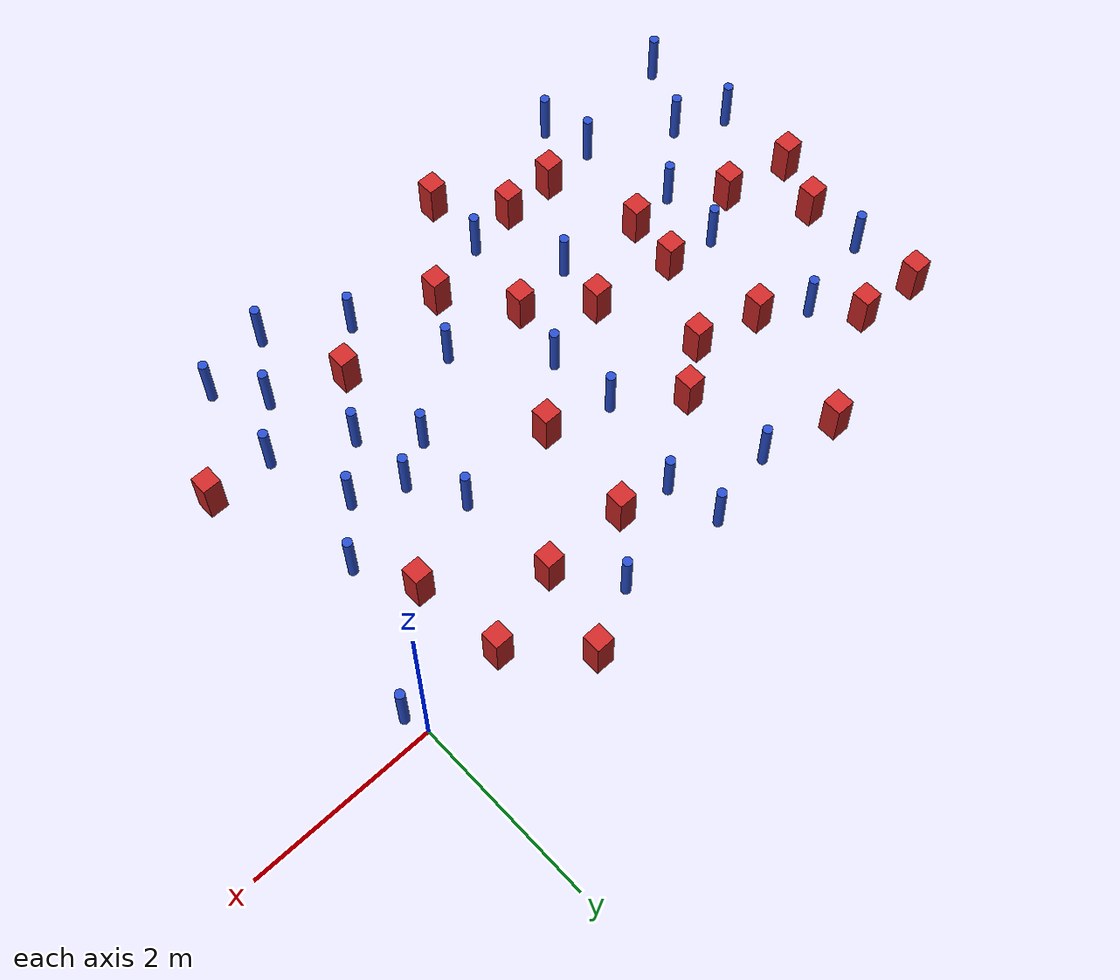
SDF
<sdf version="1.6">
 <model name="dense_60">
  <model name="pole_obstacle0">
   <static>true</static>
   <pose>-3.47626348427 -2.09135809785 7.38925637345e-09 -8.47170692798e-08 1.24976764939e-08 -1.74513093025e-07</pose>
   <link name="link">
    <pose>0 0 0.3 0 -0 0</pose>
    <inertial>
     <mass>1</mass>
     <inertia><ixx>0.145833</ixx><ixy>0</ixy><ixz>0</ixz><iyy>0.145833</iyy><iyz>0</iyz><izz>0.125</izz></inertia>
    </inertial>
    <collision name="collision">
     <geometry><cylinder><radius>0.05</radius><length>.6</length></cylinder></geometry>
    </collision>
    <visual name="visual">
     <geometry><cylinder><radius>0.05</radius><length>.6</length></cylinder></geometry>
     <material>
      <script><name>Gazebo/Blue</name><uri>file://media/materials/scripts/gazebo.material</uri></script>
     </material>
    </visual>
   </link>
  </model>
  <model name="pole_obstacle2">
   <static>true</static>
   <pose>-3.83124900783 -3.6833021294 7.38925637345e-09 -8.47170692798e-08 1.24976764939e-08 -1.74513093025e-07</pose>
   <link name="link">
    <pose>0 0 0.3 0 -0 0</pose>
    <inertial>
     <mass>1</mass>
     <inertia><ixx>0.145833</ixx><ixy>0</ixy><ixz>0</ixz><iyy>0.145833</iyy><iyz>0</iyz><izz>0.125</izz></inertia>
    </inertial>
    <collision name="collision">
     <geometry><cylinder><radius>0.05</radius><length>.6</length></cylinder></geometry>
    </collision>
    <visual name="visual">
     <geometry><cylinder><radius>0.05</radius><length>.6</length></cylinder></geometry>
     <material>
      <script><name>Gazebo/Blue</name><uri>file://media/materials/scripts/gazebo.material</uri></script>
     </material>
    </visual>
   </link>
  </model>
  <model name="square_post_obstacle4">
   <static>true</static>
   <pose>-4.94228190941 -3.76445180743 1.91545236811e-07 -7.35059704564e-06 1.12565212e-07 2.39332434364e-05</pose>
   <link name="link">
    <pose>0 0 0.25 0 -0 0</pose>
    <inertial>
     <mass>100</mass>
     <inertia>
      <ixx>0.166667</ixx>
      <ixy>0</ixy>
      <ixz>0</ixz>
      <iyy>0.166667</iyy>
      <iyz>0</iyz>
      <izz>0.166667</izz>
     </inertia>
    </inertial>
    <collision name="collision"><geometry><box><size>.2 .2 .5</size></box></geometry></collision>
    <visual name="visual">
     <geometry><box><size>.2 .2 .5</size></box></geometry>
     <material>
      <script><name>Gazebo/Red</name><uri>file://media/materials/scripts/gazebo.material</uri></script>
     </material>
    </visual>
   </link>
  </model>
  <model name="square_post_obstacle9">
   <static>true</static>
   <pose>-0.950290578173 -0.117729899493 1.91545236811e-07 -7.35059704564e-06 1.12565212e-07 2.39332434364e-05</pose>
   <link name="link">
    <pose>0 0 0.25 0 -0 0</pose>
    <inertial>
     <mass>100</mass>
     <inertia>
      <ixx>0.166667</ixx>
      <ixy>0</ixy>
      <ixz>0</ixz>
      <iyy>0.166667</iyy>
      <iyz>0</iyz>
      <izz>0.166667</izz>
     </inertia>
    </inertial>
    <collision name="collision"><geometry><box><size>.2 .2 .5</size></box></geometry></collision>
    <visual name="visual">
     <geometry><box><size>.2 .2 .5</size></box></geometry>
     <material>
      <script><name>Gazebo/Red</name><uri>file://media/materials/scripts/gazebo.material</uri></script>
     </material>
    </visual>
   </link>
  </model>
  <model name="square_post_obstacle15">
   <static>true</static>
   <pose>-6.12516694566 -0.35473652986 1.91545236811e-07 -7.35059704564e-06 1.12565212e-07 2.39332434364e-05</pose>
   <link name="link">
    <pose>0 0 0.25 0 -0 0</pose>
    <inertial>
     <mass>100</mass>
     <inertia>
      <ixx>0.166667</ixx>
      <ixy>0</ixy>
      <ixz>0</ixz>
      <iyy>0.166667</iyy>
      <iyz>0</iyz>
      <izz>0.166667</izz>
     </inertia>
    </inertial>
    <collision name="collision"><geometry><box><size>.2 .2 .5</size></box></geometry></collision>
    <visual name="visual">
     <geometry><box><size>.2 .2 .5</size></box></geometry>
     <material>
      <script><name>Gazebo/Red</name><uri>file://media/materials/scripts/gazebo.material</uri></script>
     </material>
    </visual>
   </link>
  </model>
  <model name="pole_obstacle10">
   <static>true</static>
   <pose>-6.95964568385 -3.12976137409 7.38925637345e-09 -8.47170692798e-08 1.24976764937e-08 -1.74513093023e-07</pose>
   <link name="link">
    <pose>0 0 0.3 0 -0 0</pose>
    <inertial>
     <mass>1</mass>
     <inertia><ixx>0.145833</ixx><ixy>0</ixy><ixz>0</ixz><iyy>0.145833</iyy><iyz>0</iyz><izz>0.125</izz></inertia>
    </inertial>
    <collision name="collision">
     <geometry><cylinder><radius>0.05</radius><length>.6</length></cylinder></geometry>
    </collision>
    <visual name="visual">
     <geometry><cylinder><radius>0.05</radius><length>.6</length></cylinder></geometry>
     <material>
      <script><name>Gazebo/Blue</name><uri>file://media/materials/scripts/gazebo.material</uri></script>
     </material>
    </visual>
   </link>
  </model>
  <model name="square_post_obstacle23">
   <static>true</static>
   <pose>-3.10756083365 -3.45738375206 1.91545236811e-07 -7.35059704564e-06 1.12565212e-07 2.39332434364e-05</pose>
   <link name="link">
    <pose>0 0 0.25 0 -0 0</pose>
    <inertial>
     <mass>100</mass>
     <inertia>
      <ixx>0.166667</ixx>
      <ixy>0</ixy>
      <ixz>0</ixz>
      <iyy>0.166667</iyy>
      <iyz>0</iyz>
      <izz>0.166667</izz>
     </inertia>
    </inertial>
    <collision name="collision"><geometry><box><size>.2 .2 .5</size></box></geometry></collision>
    <visual name="visual">
     <geometry><box><size>.2 .2 .5</size></box></geometry>
     <material>
      <script><name>Gazebo/Red</name><uri>file://media/materials/scripts/gazebo.material</uri></script>
     </material>
    </visual>
   </link>
  </model>
  <model name="pole_obstacle33">
   <static>true</static>
   <pose>-3.54106960491 -1.35461371272 7.38925637345e-09 -8.47170692796e-08 1.24976764713e-08 -1.74513093037e-07</pose>
   <link name="link">
    <pose>0 0 0.3 0 -0 0</pose>
    <inertial>
     <mass>1</mass>
     <inertia><ixx>0.145833</ixx><ixy>0</ixy><ixz>0</ixz><iyy>0.145833</iyy><iyz>0</iyz><izz>0.125</izz></inertia>
    </inertial>
    <collision name="collision">
     <geometry><cylinder><radius>0.05</radius><length>.6</length></cylinder></geometry>
    </collision>
    <visual name="visual">
     <geometry><cylinder><radius>0.05</radius><length>.6</length></cylinder></geometry>
     <material>
      <script><name>Gazebo/Blue</name><uri>file://media/materials/scripts/gazebo.material</uri></script>
     </material>
    </visual>
   </link>
  </model>
  <model name="pole_obstacle40">
   <static>true</static>
   <pose>-1.49519705118 -4.31215156015 7.38925637345e-09 -8.47170692799e-08 1.24976765033e-08 -1.74513093018e-07</pose>
   <link name="link">
    <pose>0 0 0.3 0 -0 0</pose>
    <inertial>
     <mass>1</mass>
     <inertia><ixx>0.145833</ixx><ixy>0</ixy><ixz>0</ixz><iyy>0.145833</iyy><iyz>0</iyz><izz>0.125</izz></inertia>
    </inertial>
    <collision name="collision">
     <geometry><cylinder><radius>0.05</radius><length>.6</length></cylinder></geometry>
    </collision>
    <visual name="visual">
     <geometry><cylinder><radius>0.05</radius><length>.6</length></cylinder></geometry>
     <material>
      <script><name>Gazebo/Blue</name><uri>file://media/materials/scripts/gazebo.material</uri></script>
     </material>
    </visual>
   </link>
  </model>
  <model name="pole_obstacle44">
   <static>true</static>
   <pose>-4.32298749021 -2.86295377761 7.38925637345e-09 -8.47170692798e-08 1.24976764937e-08 -1.74513093023e-07</pose>
   <link name="link">
    <pose>0 0 0.3 0 -0 0</pose>
    <inertial>
     <mass>1</mass>
     <inertia><ixx>0.145833</ixx><ixy>0</ixy><ixz>0</ixz><iyy>0.145833</iyy><iyz>0</iyz><izz>0.125</izz></inertia>
    </inertial>
    <collision name="collision">
     <geometry><cylinder><radius>0.05</radius><length>.6</length></cylinder></geometry>
    </collision>
    <visual name="visual">
     <geometry><cylinder><radius>0.05</radius><length>.6</length></cylinder></geometry>
     <material>
      <script><name>Gazebo/Blue</name><uri>file://media/materials/scripts/gazebo.material</uri></script>
     </material>
    </visual>
   </link>
  </model>
  <model name="square_post_obstacle48">
   <static>true</static>
   <pose>-1.83645050394 -3.36982657176 1.91545236811e-07 -7.35059704564e-06 1.12565212e-07 2.39332434364e-05</pose>
   <link name="link">
    <pose>0 0 0.25 0 -0 0</pose>
    <inertial>
     <mass>100</mass>
     <inertia>
      <ixx>0.166667</ixx>
      <ixy>0</ixy>
      <ixz>0</ixz>
      <iyy>0.166667</iyy>
      <iyz>0</iyz>
      <izz>0.166667</izz>
     </inertia>
    </inertial>
    <collision name="collision"><geometry><box><size>.2 .2 .5</size></box></geometry></collision>
    <visual name="visual">
     <geometry><box><size>.2 .2 .5</size></box></geometry>
     <material>
      <script><name>Gazebo/Red</name><uri>file://media/materials/scripts/gazebo.material</uri></script>
     </material>
    </visual>
   </link>
  </model>
  <model name="pole_obstacle47">
   <static>true</static>
   <pose>0.0822864104935 -0.241739446556 7.38925637345e-09 -8.471706928e-08 1.24976765132e-08 -1.74513093012e-07</pose>
   <link name="link">
    <pose>0 0 0.3 0 -0 0</pose>
    <inertial>
     <mass>1</mass>
     <inertia><ixx>0.145833</ixx><ixy>0</ixy><ixz>0</ixz><iyy>0.145833</iyy><iyz>0</iyz><izz>0.125</izz></inertia>
    </inertial>
    <collision name="collision">
     <geometry><cylinder><radius>0.05</radius><length>.6</length></cylinder></geometry>
    </collision>
    <visual name="visual">
     <geometry><cylinder><radius>0.05</radius><length>.6</length></cylinder></geometry>
     <material>
      <script><name>Gazebo/Blue</name><uri>file://media/materials/scripts/gazebo.material</uri></script>
     </material>
    </visual>
   </link>
  </model>
  <model name="pole_obstacle48">
   <static>true</static>
   <pose>-0.965469387628 -2.2553306697 7.38925637345e-09 -8.47170692799e-08 1.24976765063e-08 -1.74513093018e-07</pose>
   <link name="link">
    <pose>0 0 0.3 0 -0 0</pose>
    <inertial>
     <mass>1</mass>
     <inertia><ixx>0.145833</ixx><ixy>0</ixy><ixz>0</ixz><iyy>0.145833</iyy><iyz>0</iyz><izz>0.125</izz></inertia>
    </inertial>
    <collision name="collision">
     <geometry><cylinder><radius>0.05</radius><length>.6</length></cylinder></geometry>
    </collision>
    <visual name="visual">
     <geometry><cylinder><radius>0.05</radius><length>.6</length></cylinder></geometry>
     <material>
      <script><name>Gazebo/Blue</name><uri>file://media/materials/scripts/gazebo.material</uri></script>
     </material>
    </visual>
   </link>
  </model>
  <model name="pole_obstacle50">
   <static>true</static>
   <pose>-5.54593377779 -3.81472021383 7.38925637345e-09 -8.47170692798e-08 1.24976764937e-08 -1.74513093023e-07</pose>
   <link name="link">
    <pose>0 0 0.3 0 -0 0</pose>
    <inertial>
     <mass>1</mass>
     <inertia><ixx>0.145833</ixx><ixy>0</ixy><ixz>0</ixz><iyy>0.145833</iyy><iyz>0</iyz><izz>0.125</izz></inertia>
    </inertial>
    <collision name="collision">
     <geometry><cylinder><radius>0.05</radius><length>.6</length></cylinder></geometry>
    </collision>
    <visual name="visual">
     <geometry><cylinder><radius>0.05</radius><length>.6</length></cylinder></geometry>
     <material>
      <script><name>Gazebo/Blue</name><uri>file://media/materials/scripts/gazebo.material</uri></script>
     </material>
    </visual>
   </link>
  </model>
  <model name="square_post_obstacle51">
   <static>true</static>
   <pose>-3.85667295764 -4.37827110844 1.91545236811e-07 -7.35059704564e-06 1.12565212e-07 2.39332434364e-05</pose>
   <link name="link">
    <pose>0 0 0.25 0 -0 0</pose>
    <inertial>
     <mass>100</mass>
     <inertia>
      <ixx>0.166667</ixx>
      <ixy>0</ixy>
      <ixz>0</ixz>
      <iyy>0.166667</iyy>
      <iyz>0</iyz>
      <izz>0.166667</izz>
     </inertia>
    </inertial>
    <collision name="collision"><geometry><box><size>.2 .2 .5</size></box></geometry></collision>
    <visual name="visual">
     <geometry><box><size>.2 .2 .5</size></box></geometry>
     <material>
      <script><name>Gazebo/Red</name><uri>file://media/materials/scripts/gazebo.material</uri></script>
     </material>
    </visual>
   </link>
  </model>
  <model name="pole_obstacle51">
   <static>true</static>
   <pose>-1.91894833646 -2.29968438132 7.38925637345e-09 -8.47170692799e-08 1.24976765053e-08 -1.74513093017e-07</pose>
   <link name="link">
    <pose>0 0 0.3 0 -0 0</pose>
    <inertial>
     <mass>1</mass>
     <inertia><ixx>0.145833</ixx><ixy>0</ixy><ixz>0</ixz><iyy>0.145833</iyy><iyz>0</iyz><izz>0.125</izz></inertia>
    </inertial>
    <collision name="collision">
     <geometry><cylinder><radius>0.05</radius><length>.6</length></cylinder></geometry>
    </collision>
    <visual name="visual">
     <geometry><cylinder><radius>0.05</radius><length>.6</length></cylinder></geometry>
     <material>
      <script><name>Gazebo/Blue</name><uri>file://media/materials/scripts/gazebo.material</uri></script>
     </material>
    </visual>
   </link>
  </model>
  <model name="pole_obstacle54">
   <static>true</static>
   <pose>-1.44606926043 -2.76261912526 7.38925637345e-09 -8.47170692799e-08 1.24976765053e-08 -1.74513093017e-07</pose>
   <link name="link">
    <pose>0 0 0.3 0 -0 0</pose>
    <inertial>
     <mass>1</mass>
     <inertia><ixx>0.145833</ixx><ixy>0</ixy><ixz>0</ixz><iyy>0.145833</iyy><iyz>0</iyz><izz>0.125</izz></inertia>
    </inertial>
    <collision name="collision">
     <geometry><cylinder><radius>0.05</radius><length>.6</length></cylinder></geometry>
    </collision>
    <visual name="visual">
     <geometry><cylinder><radius>0.05</radius><length>.6</length></cylinder></geometry>
     <material>
      <script><name>Gazebo/Blue</name><uri>file://media/materials/scripts/gazebo.material</uri></script>
     </material>
    </visual>
   </link>
  </model>
  <model name="square_post_obstacle58">
   <static>true</static>
   <pose>-5.33617169923 -1.07786139157 1.91545236811e-07 -7.35059704564e-06 1.12565212e-07 2.39332434364e-05</pose>
   <link name="link">
    <pose>0 0 0.25 0 -0 0</pose>
    <inertial>
     <mass>100</mass>
     <inertia>
      <ixx>0.166667</ixx>
      <ixy>0</ixy>
      <ixz>0</ixz>
      <iyy>0.166667</iyy>
      <iyz>0</iyz>
      <izz>0.166667</izz>
     </inertia>
    </inertial>
    <collision name="collision"><geometry><box><size>.2 .2 .5</size></box></geometry></collision>
    <visual name="visual">
     <geometry><box><size>.2 .2 .5</size></box></geometry>
     <material>
      <script><name>Gazebo/Red</name><uri>file://media/materials/scripts/gazebo.material</uri></script>
     </material>
    </visual>
   </link>
  </model>
  <model name="square_post_obstacle59">
   <static>true</static>
   <pose>-4.64176704061 -1.24235177643 1.91545236811e-07 -7.35059704564e-06 1.12565212e-07 2.39332434364e-05</pose>
   <link name="link">
    <pose>0 0 0.25 0 -0 0</pose>
    <inertial>
     <mass>100</mass>
     <inertia>
      <ixx>0.166667</ixx>
      <ixy>0</ixy>
      <ixz>0</ixz>
      <iyy>0.166667</iyy>
      <iyz>0</iyz>
      <izz>0.166667</izz>
     </inertia>
    </inertial>
    <collision name="collision"><geometry><box><size>.2 .2 .5</size></box></geometry></collision>
    <visual name="visual">
     <geometry><box><size>.2 .2 .5</size></box></geometry>
     <material>
      <script><name>Gazebo/Red</name><uri>file://media/materials/scripts/gazebo.material</uri></script>
     </material>
    </visual>
   </link>
  </model>
  <model name="pole_obstacle59">
   <static>true</static>
   <pose>-5.702376485 -2.09050226253 7.38925637345e-09 -8.47170692798e-08 1.24976764937e-08 -1.74513093023e-07</pose>
   <link name="link">
    <pose>0 0 0.3 0 -0 0</pose>
    <inertial>
     <mass>1</mass>
     <inertia><ixx>0.145833</ixx><ixy>0</ixy><ixz>0</ixz><iyy>0.145833</iyy><iyz>0</iyz><izz>0.125</izz></inertia>
    </inertial>
    <collision name="collision">
     <geometry><cylinder><radius>0.05</radius><length>.6</length></cylinder></geometry>
    </collision>
    <visual name="visual">
     <geometry><cylinder><radius>0.05</radius><length>.6</length></cylinder></geometry>
     <material>
      <script><name>Gazebo/Blue</name><uri>file://media/materials/scripts/gazebo.material</uri></script>
     </material>
    </visual>
   </link>
  </model>
  <model name="square_post_obstacle64">
   <static>true</static>
   <pose>-2.7587264969 -0.38735793425 1.91545236811e-07 -7.35059704564e-06 1.12565212e-07 2.39332434364e-05</pose>
   <link name="link">
    <pose>0 0 0.25 0 -0 0</pose>
    <inertial>
     <mass>100</mass>
     <inertia>
      <ixx>0.166667</ixx>
      <ixy>0</ixy>
      <ixz>0</ixz>
      <iyy>0.166667</iyy>
      <iyz>0</iyz>
      <izz>0.166667</izz>
     </inertia>
    </inertial>
    <collision name="collision"><geometry><box><size>.2 .2 .5</size></box></geometry></collision>
    <visual name="visual">
     <geometry><box><size>.2 .2 .5</size></box></geometry>
     <material>
      <script><name>Gazebo/Red</name><uri>file://media/materials/scripts/gazebo.material</uri></script>
     </material>
    </visual>
   </link>
  </model>
  <model name="square_post_obstacle75">
   <static>true</static>
   <pose>-6.21620699617 -2.37087554527 1.91545236811e-07 -7.35059704564e-06 1.12565212e-07 2.39332434364e-05</pose>
   <link name="link">
    <pose>0 0 0.25 0 -0 0</pose>
    <inertial>
     <mass>100</mass>
     <inertia>
      <ixx>0.166667</ixx>
      <ixy>0</ixy>
      <ixz>0</ixz>
      <iyy>0.166667</iyy>
      <iyz>0</iyz>
      <izz>0.166667</izz>
     </inertia>
    </inertial>
    <collision name="collision"><geometry><box><size>.2 .2 .5</size></box></geometry></collision>
    <visual name="visual">
     <geometry><box><size>.2 .2 .5</size></box></geometry>
     <material>
      <script><name>Gazebo/Red</name><uri>file://media/materials/scripts/gazebo.material</uri></script>
     </material>
    </visual>
   </link>
  </model>
  <model name="pole_obstacle70">
   <static>true</static>
   <pose>-1.77735977837 -1.48738273804 7.38925637345e-09 -8.471706928e-08 1.24976765079e-08 -1.74513093017e-07</pose>
   <link name="link">
    <pose>0 0 0.3 0 -0 0</pose>
    <inertial>
     <mass>1</mass>
     <inertia><ixx>0.145833</ixx><ixy>0</ixy><ixz>0</ixz><iyy>0.145833</iyy><iyz>0</iyz><izz>0.125</izz></inertia>
    </inertial>
    <collision name="collision">
     <geometry><cylinder><radius>0.05</radius><length>.6</length></cylinder></geometry>
    </collision>
    <visual name="visual">
     <geometry><cylinder><radius>0.05</radius><length>.6</length></cylinder></geometry>
     <material>
      <script><name>Gazebo/Blue</name><uri>file://media/materials/scripts/gazebo.material</uri></script>
     </material>
    </visual>
   </link>
  </model>
  <model name="square_post_obstacle76">
   <static>true</static>
   <pose>-2.85892131777 -1.53526582445 1.91545236811e-07 -7.35059704564e-06 1.12565212e-07 2.39332434364e-05</pose>
   <link name="link">
    <pose>0 0 0.25 0 -0 0</pose>
    <inertial>
     <mass>100</mass>
     <inertia>
      <ixx>0.166667</ixx>
      <ixy>0</ixy>
      <ixz>0</ixz>
      <iyy>0.166667</iyy>
      <iyz>0</iyz>
      <izz>0.166667</izz>
     </inertia>
    </inertial>
    <collision name="collision"><geometry><box><size>.2 .2 .5</size></box></geometry></collision>
    <visual name="visual">
     <geometry><box><size>.2 .2 .5</size></box></geometry>
     <material>
      <script><name>Gazebo/Red</name><uri>file://media/materials/scripts/gazebo.material</uri></script>
     </material>
    </visual>
   </link>
  </model>
  <model name="pole_obstacle76">
   <static>true</static>
   <pose>-2.2700673939 -3.82190759298 7.38925637345e-09 -8.47170692798e-08 1.24976764939e-08 -1.74513093025e-07</pose>
   <link name="link">
    <pose>0 0 0.3 0 -0 0</pose>
    <inertial>
     <mass>1</mass>
     <inertia><ixx>0.145833</ixx><ixy>0</ixy><ixz>0</ixz><iyy>0.145833</iyy><iyz>0</iyz><izz>0.125</izz></inertia>
    </inertial>
    <collision name="collision">
     <geometry><cylinder><radius>0.05</radius><length>.6</length></cylinder></geometry>
    </collision>
    <visual name="visual">
     <geometry><cylinder><radius>0.05</radius><length>.6</length></cylinder></geometry>
     <material>
      <script><name>Gazebo/Blue</name><uri>file://media/materials/scripts/gazebo.material</uri></script>
     </material>
    </visual>
   </link>
  </model>
  <model name="pole_obstacle82">
   <static>true</static>
   <pose>-5.41580588375 -4.33905068635 7.38925637345e-09 -8.47170692796e-08 1.24976764786e-08 -1.74513093032e-07</pose>
   <link name="link">
    <pose>0 0 0.3 0 -0 0</pose>
    <inertial>
     <mass>1</mass>
     <inertia><ixx>0.145833</ixx><ixy>0</ixy><ixz>0</ixz><iyy>0.145833</iyy><iyz>0</iyz><izz>0.125</izz></inertia>
    </inertial>
    <collision name="collision">
     <geometry><cylinder><radius>0.05</radius><length>.6</length></cylinder></geometry>
    </collision>
    <visual name="visual">
     <geometry><cylinder><radius>0.05</radius><length>.6</length></cylinder></geometry>
     <material>
      <script><name>Gazebo/Blue</name><uri>file://media/materials/scripts/gazebo.material</uri></script>
     </material>
    </visual>
   </link>
  </model>
  <model name="pole_obstacle83">
   <static>true</static>
   <pose>-4.22010175236 0.0912814891144 7.38925637345e-09 -8.47170692799e-08 1.24976765066e-08 -1.74513093016e-07</pose>
   <link name="link">
    <pose>0 0 0.3 0 -0 0</pose>
    <inertial>
     <mass>1</mass>
     <inertia><ixx>0.145833</ixx><ixy>0</ixy><ixz>0</ixz><iyy>0.145833</iyy><iyz>0</iyz><izz>0.125</izz></inertia>
    </inertial>
    <collision name="collision">
     <geometry><cylinder><radius>0.05</radius><length>.6</length></cylinder></geometry>
    </collision>
    <visual name="visual">
     <geometry><cylinder><radius>0.05</radius><length>.6</length></cylinder></geometry>
     <material>
      <script><name>Gazebo/Blue</name><uri>file://media/materials/scripts/gazebo.material</uri></script>
     </material>
    </visual>
   </link>
  </model>
  <model name="pole_obstacle85">
   <static>true</static>
   <pose>-3.30812540201 -0.297309392076 7.38925637345e-09 -8.47170692793e-08 1.24976764479e-08 -1.74513093039e-07</pose>
   <link name="link">
    <pose>0 0 0.3 0 -0 0</pose>
    <inertial>
     <mass>1</mass>
     <inertia><ixx>0.145833</ixx><ixy>0</ixy><ixz>0</ixz><iyy>0.145833</iyy><iyz>0</iyz><izz>0.125</izz></inertia>
    </inertial>
    <collision name="collision">
     <geometry><cylinder><radius>0.05</radius><length>.6</length></cylinder></geometry>
    </collision>
    <visual name="visual">
     <geometry><cylinder><radius>0.05</radius><length>.6</length></cylinder></geometry>
     <material>
      <script><name>Gazebo/Blue</name><uri>file://media/materials/scripts/gazebo.material</uri></script>
     </material>
    </visual>
   </link>
  </model>
  <model name="square_post_obstacle80">
   <static>true</static>
   <pose>-0.000718190362245 -3.16822527989 1.91545236811e-07 -7.35059704564e-06 1.12565212e-07 2.39332434364e-05</pose>
   <link name="link">
    <pose>0 0 0.25 0 -0 0</pose>
    <inertial>
     <mass>100</mass>
     <inertia>
      <ixx>0.166667</ixx>
      <ixy>0</ixy>
      <ixz>0</ixz>
      <iyy>0.166667</iyy>
      <iyz>0</iyz>
      <izz>0.166667</izz>
     </inertia>
    </inertial>
    <collision name="collision"><geometry><box><size>.2 .2 .5</size></box></geometry></collision>
    <visual name="visual">
     <geometry><box><size>.2 .2 .5</size></box></geometry>
     <material>
      <script><name>Gazebo/Red</name><uri>file://media/materials/scripts/gazebo.material</uri></script>
     </material>
    </visual>
   </link>
  </model>
  <model name="pole_obstacle104">
   <static>true</static>
   <pose>-6.4433133397 -3.38967268869 7.38925637345e-09 -8.47170692798e-08 1.24976764937e-08 -1.74513093023e-07</pose>
   <link name="link">
    <pose>0 0 0.3 0 -0 0</pose>
    <inertial>
     <mass>1</mass>
     <inertia><ixx>0.145833</ixx><ixy>0</ixy><ixz>0</ixz><iyy>0.145833</iyy><iyz>0</iyz><izz>0.125</izz></inertia>
    </inertial>
    <collision name="collision">
     <geometry><cylinder><radius>0.05</radius><length>.6</length></cylinder></geometry>
    </collision>
    <visual name="visual">
     <geometry><cylinder><radius>0.05</radius><length>.6</length></cylinder></geometry>
     <material>
      <script><name>Gazebo/Blue</name><uri>file://media/materials/scripts/gazebo.material</uri></script>
     </material>
    </visual>
   </link>
  </model>
  <model name="square_post_obstacle93">
   <static>true</static>
   <pose>-0.841296802821 -1.09614409623 1.91545236811e-07 -7.35059704564e-06 1.12565212e-07 2.39332434364e-05</pose>
   <link name="link">
    <pose>0 0 0.25 0 -0 0</pose>
    <inertial>
     <mass>100</mass>
     <inertia>
      <ixx>0.166667</ixx>
      <ixy>0</ixy>
      <ixz>0</ixz>
      <iyy>0.166667</iyy>
      <iyz>0</iyz>
      <izz>0.166667</izz>
     </inertia>
    </inertial>
    <collision name="collision"><geometry><box><size>.2 .2 .5</size></box></geometry></collision>
    <visual name="visual">
     <geometry><box><size>.2 .2 .5</size></box></geometry>
     <material>
      <script><name>Gazebo/Red</name><uri>file://media/materials/scripts/gazebo.material</uri></script>
     </material>
    </visual>
   </link>
  </model>
  <model name="pole_obstacle112">
   <static>true</static>
   <pose>-2.74373023019 -2.87799243884 7.38925637345e-09 -8.47170692798e-08 1.24976764939e-08 -1.74513093025e-07</pose>
   <link name="link">
    <pose>0 0 0.3 0 -0 0</pose>
    <inertial>
     <mass>1</mass>
     <inertia><ixx>0.145833</ixx><ixy>0</ixy><ixz>0</ixz><iyy>0.145833</iyy><iyz>0</iyz><izz>0.125</izz></inertia>
    </inertial>
    <collision name="collision">
     <geometry><cylinder><radius>0.05</radius><length>.6</length></cylinder></geometry>
    </collision>
    <visual name="visual">
     <geometry><cylinder><radius>0.05</radius><length>.6</length></cylinder></geometry>
     <material>
      <script><name>Gazebo/Blue</name><uri>file://media/materials/scripts/gazebo.material</uri></script>
     </material>
    </visual>
   </link>
  </model>
  <model name="square_post_obstacle99">
   <static>true</static>
   <pose>-4.99266056635 0.30987088293 1.91545236811e-07 -7.35059704564e-06 1.12565212e-07 2.39332434364e-05</pose>
   <link name="link">
    <pose>0 0 0.25 0 -0 0</pose>
    <inertial>
     <mass>100</mass>
     <inertia>
      <ixx>0.166667</ixx>
      <ixy>0</ixy>
      <ixz>0</ixz>
      <iyy>0.166667</iyy>
      <iyz>0</iyz>
      <izz>0.166667</izz>
     </inertia>
    </inertial>
    <collision name="collision"><geometry><box><size>.2 .2 .5</size></box></geometry></collision>
    <visual name="visual">
     <geometry><box><size>.2 .2 .5</size></box></geometry>
     <material>
      <script><name>Gazebo/Red</name><uri>file://media/materials/scripts/gazebo.material</uri></script>
     </material>
    </visual>
   </link>
  </model>
  <model name="pole_obstacle116">
   <static>true</static>
   <pose>-5.76061612195 -2.8009423948 7.38925637345e-09 -8.47170692798e-08 1.24976764937e-08 -1.74513093023e-07</pose>
   <link name="link">
    <pose>0 0 0.3 0 -0 0</pose>
    <inertial>
     <mass>1</mass>
     <inertia><ixx>0.145833</ixx><ixy>0</ixy><ixz>0</ixz><iyy>0.145833</iyy><iyz>0</iyz><izz>0.125</izz></inertia>
    </inertial>
    <collision name="collision">
     <geometry><cylinder><radius>0.05</radius><length>.6</length></cylinder></geometry>
    </collision>
    <visual name="visual">
     <geometry><cylinder><radius>0.05</radius><length>.6</length></cylinder></geometry>
     <material>
      <script><name>Gazebo/Blue</name><uri>file://media/materials/scripts/gazebo.material</uri></script>
     </material>
    </visual>
   </link>
  </model>
  <model name="pole_obstacle134">
   <static>true</static>
   <pose>-0.531344333198 -1.70714998279 7.38925637345e-09 -8.471706928e-08 1.24976765092e-08 -1.74513093016e-07</pose>
   <link name="link">
    <pose>0 0 0.3 0 -0 0</pose>
    <inertial>
     <mass>1</mass>
     <inertia><ixx>0.145833</ixx><ixy>0</ixy><ixz>0</ixz><iyy>0.145833</iyy><iyz>0</iyz><izz>0.125</izz></inertia>
    </inertial>
    <collision name="collision">
     <geometry><cylinder><radius>0.05</radius><length>.6</length></cylinder></geometry>
    </collision>
    <visual name="visual">
     <geometry><cylinder><radius>0.05</radius><length>.6</length></cylinder></geometry>
     <material>
      <script><name>Gazebo/Blue</name><uri>file://media/materials/scripts/gazebo.material</uri></script>
     </material>
    </visual>
   </link>
  </model>
  <model name="square_post_obstacle127">
   <static>true</static>
   <pose>-4.1450002115 -0.867577687956 1.91545236811e-07 -7.35059704564e-06 1.12565212e-07 2.39332434364e-05</pose>
   <link name="link">
    <pose>0 0 0.25 0 -0 0</pose>
    <inertial>
     <mass>100</mass>
     <inertia>
      <ixx>0.166667</ixx>
      <ixy>0</ixy>
      <ixz>0</ixz>
      <iyy>0.166667</iyy>
      <iyz>0</iyz>
      <izz>0.166667</izz>
     </inertia>
    </inertial>
    <collision name="collision"><geometry><box><size>.2 .2 .5</size></box></geometry></collision>
    <visual name="visual">
     <geometry><box><size>.2 .2 .5</size></box></geometry>
     <material>
      <script><name>Gazebo/Red</name><uri>file://media/materials/scripts/gazebo.material</uri></script>
     </material>
    </visual>
   </link>
  </model>
  <model name="square_post_obstacle131">
   <static>true</static>
   <pose>-6.94998074292 -2.22711516486 1.91545236811e-07 -7.35059704564e-06 1.12565212e-07 2.39332434364e-05</pose>
   <link name="link">
    <pose>0 0 0.25 0 -0 0</pose>
    <inertial>
     <mass>100</mass>
     <inertia>
      <ixx>0.166667</ixx>
      <ixy>0</ixy>
      <ixz>0</ixz>
      <iyy>0.166667</iyy>
      <iyz>0</iyz>
      <izz>0.166667</izz>
     </inertia>
    </inertial>
    <collision name="collision"><geometry><box><size>.2 .2 .5</size></box></geometry></collision>
    <visual name="visual">
     <geometry><box><size>.2 .2 .5</size></box></geometry>
     <material>
      <script><name>Gazebo/Red</name><uri>file://media/materials/scripts/gazebo.material</uri></script>
     </material>
    </visual>
   </link>
  </model>
  <model name="pole_obstacle144">
   <static>true</static>
   <pose>-5.80365485786 -0.790895479901 7.38925637345e-09 -8.47170692799e-08 1.24976765038e-08 -1.74513093018e-07</pose>
   <link name="link">
    <pose>0 0 0.3 0 -0 0</pose>
    <inertial>
     <mass>1</mass>
     <inertia><ixx>0.145833</ixx><ixy>0</ixy><ixz>0</ixz><iyy>0.145833</iyy><iyz>0</iyz><izz>0.125</izz></inertia>
    </inertial>
    <collision name="collision">
     <geometry><cylinder><radius>0.05</radius><length>.6</length></cylinder></geometry>
    </collision>
    <visual name="visual">
     <geometry><cylinder><radius>0.05</radius><length>.6</length></cylinder></geometry>
     <material>
      <script><name>Gazebo/Blue</name><uri>file://media/materials/scripts/gazebo.material</uri></script>
     </material>
    </visual>
   </link>
  </model>
  <model name="square_post_obstacle140">
   <static>true</static>
   <pose>-3.62150908893 -2.75184647773 1.91545236811e-07 -7.35059704564e-06 1.12565212e-07 2.39332434364e-05</pose>
   <link name="link">
    <pose>0 0 0.25 0 -0 0</pose>
    <inertial>
     <mass>100</mass>
     <inertia>
      <ixx>0.166667</ixx>
      <ixy>0</ixy>
      <ixz>0</ixz>
      <iyy>0.166667</iyy>
      <iyz>0</iyz>
      <izz>0.166667</izz>
     </inertia>
    </inertial>
    <collision name="collision"><geometry><box><size>.2 .2 .5</size></box></geometry></collision>
    <visual name="visual">
     <geometry><box><size>.2 .2 .5</size></box></geometry>
     <material>
      <script><name>Gazebo/Red</name><uri>file://media/materials/scripts/gazebo.material</uri></script>
     </material>
    </visual>
   </link>
  </model>
  <model name="square_post_obstacle151">
   <static>true</static>
   <pose>-1.83662413128 -0.38633923437 1.91545236811e-07 -7.35059704564e-06 1.12565212e-07 2.39332434364e-05</pose>
   <link name="link">
    <pose>0 0 0.25 0 -0 0</pose>
    <inertial>
     <mass>100</mass>
     <inertia>
      <ixx>0.166667</ixx>
      <ixy>0</ixy>
      <ixz>0</ixz>
      <iyy>0.166667</iyy>
      <iyz>0</iyz>
      <izz>0.166667</izz>
     </inertia>
    </inertial>
    <collision name="collision"><geometry><box><size>.2 .2 .5</size></box></geometry></collision>
    <visual name="visual">
     <geometry><box><size>.2 .2 .5</size></box></geometry>
     <material>
      <script><name>Gazebo/Red</name><uri>file://media/materials/scripts/gazebo.material</uri></script>
     </material>
    </visual>
   </link>
  </model>
  <model name="square_post_obstacle152">
   <static>true</static>
   <pose>-6.71019114065 -1.64083482325 1.91545236811e-07 -7.35059704564e-06 1.12565212e-07 2.39332434364e-05</pose>
   <link name="link">
    <pose>0 0 0.25 0 -0 0</pose>
    <inertial>
     <mass>100</mass>
     <inertia>
      <ixx>0.166667</ixx>
      <ixy>0</ixy>
      <ixz>0</ixz>
      <iyy>0.166667</iyy>
      <iyz>0</iyz>
      <izz>0.166667</izz>
     </inertia>
    </inertial>
    <collision name="collision"><geometry><box><size>.2 .2 .5</size></box></geometry></collision>
    <visual name="visual">
     <geometry><box><size>.2 .2 .5</size></box></geometry>
     <material>
      <script><name>Gazebo/Red</name><uri>file://media/materials/scripts/gazebo.material</uri></script>
     </material>
    </visual>
   </link>
  </model>
  <model name="square_post_obstacle153">
   <static>true</static>
   <pose>-4.36937615305 -3.76004811518 1.91545236811e-07 -7.35059704564e-06 1.12565212e-07 2.39332434364e-05</pose>
   <link name="link">
    <pose>0 0 0.25 0 -0 0</pose>
    <inertial>
     <mass>100</mass>
     <inertia>
      <ixx>0.166667</ixx>
      <ixy>0</ixy>
      <ixz>0</ixz>
      <iyy>0.166667</iyy>
      <iyz>0</iyz>
      <izz>0.166667</izz>
     </inertia>
    </inertial>
    <collision name="collision"><geometry><box><size>.2 .2 .5</size></box></geometry></collision>
    <visual name="visual">
     <geometry><box><size>.2 .2 .5</size></box></geometry>
     <material>
      <script><name>Gazebo/Red</name><uri>file://media/materials/scripts/gazebo.material</uri></script>
     </material>
    </visual>
   </link>
  </model>
  <model name="pole_obstacle163">
   <static>true</static>
   <pose>-6.74342009509 -1.01037513458 7.38925637345e-09 -8.471706928e-08 1.24976765101e-08 -1.74513093015e-07</pose>
   <link name="link">
    <pose>0 0 0.3 0 -0 0</pose>
    <inertial>
     <mass>1</mass>
     <inertia><ixx>0.145833</ixx><ixy>0</ixy><ixz>0</ixz><iyy>0.145833</iyy><iyz>0</iyz><izz>0.125</izz></inertia>
    </inertial>
    <collision name="collision">
     <geometry><cylinder><radius>0.05</radius><length>.6</length></cylinder></geometry>
    </collision>
    <visual name="visual">
     <geometry><cylinder><radius>0.05</radius><length>.6</length></cylinder></geometry>
     <material>
      <script><name>Gazebo/Blue</name><uri>file://media/materials/scripts/gazebo.material</uri></script>
     </material>
    </visual>
   </link>
  </model>
  <model name="pole_obstacle169">
   <static>true</static>
   <pose>-1.4759065725 -2.04086400207 7.38925637345e-09 -8.47170692798e-08 1.24976764909e-08 -1.74513093024e-07</pose>
   <link name="link">
    <pose>0 0 0.3 0 -0 0</pose>
    <inertial>
     <mass>1</mass>
     <inertia><ixx>0.145833</ixx><ixy>0</ixy><ixz>0</ixz><iyy>0.145833</iyy><iyz>0</iyz><izz>0.125</izz></inertia>
    </inertial>
    <collision name="collision">
     <geometry><cylinder><radius>0.05</radius><length>.6</length></cylinder></geometry>
    </collision>
    <visual name="visual">
     <geometry><cylinder><radius>0.05</radius><length>.6</length></cylinder></geometry>
     <material>
      <script><name>Gazebo/Blue</name><uri>file://media/materials/scripts/gazebo.material</uri></script>
     </material>
    </visual>
   </link>
  </model>
  <model name="square_post_obstacle165">
   <static>true</static>
   <pose>-4.22900204314 -2.27198600877 1.91545236811e-07 -7.35059704564e-06 1.12565212e-07 2.39332434364e-05</pose>
   <link name="link">
    <pose>0 0 0.25 0 -0 0</pose>
    <inertial>
     <mass>100</mass>
     <inertia>
      <ixx>0.166667</ixx>
      <ixy>0</ixy>
      <ixz>0</ixz>
      <iyy>0.166667</iyy>
      <iyz>0</iyz>
      <izz>0.166667</izz>
     </inertia>
    </inertial>
    <collision name="collision"><geometry><box><size>.2 .2 .5</size></box></geometry></collision>
    <visual name="visual">
     <geometry><box><size>.2 .2 .5</size></box></geometry>
     <material>
      <script><name>Gazebo/Red</name><uri>file://media/materials/scripts/gazebo.material</uri></script>
     </material>
    </visual>
   </link>
  </model>
  <model name="square_post_obstacle166">
   <static>true</static>
   <pose>-5.14342567236 -2.14890510595 1.91545236811e-07 -7.35059704564e-06 1.12565212e-07 2.39332434364e-05</pose>
   <link name="link">
    <pose>0 0 0.25 0 -0 0</pose>
    <inertial>
     <mass>100</mass>
     <inertia>
      <ixx>0.166667</ixx>
      <ixy>0</ixy>
      <ixz>0</ixz>
      <iyy>0.166667</iyy>
      <iyz>0</iyz>
      <izz>0.166667</izz>
     </inertia>
    </inertial>
    <collision name="collision"><geometry><box><size>.2 .2 .5</size></box></geometry></collision>
    <visual name="visual">
     <geometry><box><size>.2 .2 .5</size></box></geometry>
     <material>
      <script><name>Gazebo/Red</name><uri>file://media/materials/scripts/gazebo.material</uri></script>
     </material>
    </visual>
   </link>
  </model>
  <model name="square_post_obstacle167">
   <static>true</static>
   <pose>-5.2225756514 -2.72970848188 1.91545236811e-07 -7.35059704564e-06 1.12565212e-07 2.39332434364e-05</pose>
   <link name="link">
    <pose>0 0 0.25 0 -0 0</pose>
    <inertial>
     <mass>100</mass>
     <inertia>
      <ixx>0.166667</ixx>
      <ixy>0</ixy>
      <ixz>0</ixz>
      <iyy>0.166667</iyy>
      <iyz>0</iyz>
      <izz>0.166667</izz>
     </inertia>
    </inertial>
    <collision name="collision"><geometry><box><size>.2 .2 .5</size></box></geometry></collision>
    <visual name="visual">
     <geometry><box><size>.2 .2 .5</size></box></geometry>
     <material>
      <script><name>Gazebo/Red</name><uri>file://media/materials/scripts/gazebo.material</uri></script>
     </material>
    </visual>
   </link>
  </model>
  <model name="pole_obstacle182">
   <static>true</static>
   <pose>-0.732076126556 -4.1470765512 7.38925637345e-09 -8.471706928e-08 1.24976765086e-08 -1.74513093015e-07</pose>
   <link name="link">
    <pose>0 0 0.3 0 -0 0</pose>
    <inertial>
     <mass>1</mass>
     <inertia><ixx>0.145833</ixx><ixy>0</ixy><ixz>0</ixz><iyy>0.145833</iyy><iyz>0</iyz><izz>0.125</izz></inertia>
    </inertial>
    <collision name="collision">
     <geometry><cylinder><radius>0.05</radius><length>.6</length></cylinder></geometry>
    </collision>
    <visual name="visual">
     <geometry><cylinder><radius>0.05</radius><length>.6</length></cylinder></geometry>
     <material>
      <script><name>Gazebo/Blue</name><uri>file://media/materials/scripts/gazebo.material</uri></script>
     </material>
    </visual>
   </link>
  </model>
  <model name="pole_obstacle183">
   <static>true</static>
   <pose>-3.41682368382 0.276478437153 7.38925637345e-09 -8.471706928e-08 1.24976765126e-08 -1.74513093015e-07</pose>
   <link name="link">
    <pose>0 0 0.3 0 -0 0</pose>
    <inertial>
     <mass>1</mass>
     <inertia><ixx>0.145833</ixx><ixy>0</ixy><ixz>0</ixz><iyy>0.145833</iyy><iyz>0</iyz><izz>0.125</izz></inertia>
    </inertial>
    <collision name="collision">
     <geometry><cylinder><radius>0.05</radius><length>.6</length></cylinder></geometry>
    </collision>
    <visual name="visual">
     <geometry><cylinder><radius>0.05</radius><length>.6</length></cylinder></geometry>
     <material>
      <script><name>Gazebo/Blue</name><uri>file://media/materials/scripts/gazebo.material</uri></script>
     </material>
    </visual>
   </link>
  </model>
  <model name="pole_obstacle185">
   <static>true</static>
   <pose>-2.27748575342 0.189621440817 7.38925637345e-09 -8.47170692801e-08 1.24976765195e-08 -1.74513093011e-07</pose>
   <link name="link">
    <pose>0 0 0.3 0 -0 0</pose>
    <inertial>
     <mass>1</mass>
     <inertia><ixx>0.145833</ixx><ixy>0</ixy><ixz>0</ixz><iyy>0.145833</iyy><iyz>0</iyz><izz>0.125</izz></inertia>
    </inertial>
    <collision name="collision">
     <geometry><cylinder><radius>0.05</radius><length>.6</length></cylinder></geometry>
    </collision>
    <visual name="visual">
     <geometry><cylinder><radius>0.05</radius><length>.6</length></cylinder></geometry>
     <material>
      <script><name>Gazebo/Blue</name><uri>file://media/materials/scripts/gazebo.material</uri></script>
     </material>
    </visual>
   </link>
  </model>
  <model name="square_post_obstacle174">
   <static>true</static>
   <pose>-1.59757870177 0.52656098434 1.91545236811e-07 -7.35059704564e-06 1.12565212e-07 2.39332434364e-05</pose>
   <link name="link">
    <pose>0 0 0.25 0 -0 0</pose>
    <inertial>
     <mass>100</mass>
     <inertia>
      <ixx>0.166667</ixx>
      <ixy>0</ixy>
      <ixz>0</ixz>
      <iyy>0.166667</iyy>
      <iyz>0</iyz>
      <izz>0.166667</izz>
     </inertia>
    </inertial>
    <collision name="collision"><geometry><box><size>.2 .2 .5</size></box></geometry></collision>
    <visual name="visual">
     <geometry><box><size>.2 .2 .5</size></box></geometry>
     <material>
      <script><name>Gazebo/Red</name><uri>file://media/materials/scripts/gazebo.material</uri></script>
     </material>
    </visual>
   </link>
  </model>
  <model name="square_post_obstacle195">
   <static>true</static>
   <pose>-6.78594443268 -0.284525703883 1.91545236811e-07 -7.35059704564e-06 1.12565212e-07 2.39332434364e-05</pose>
   <link name="link">
    <pose>0 0 0.25 0 -0 0</pose>
    <inertial>
     <mass>100</mass>
     <inertia>
      <ixx>0.166667</ixx>
      <ixy>0</ixy>
      <ixz>0</ixz>
      <iyy>0.166667</iyy>
      <iyz>0</iyz>
      <izz>0.166667</izz>
     </inertia>
    </inertial>
    <collision name="collision"><geometry><box><size>.2 .2 .5</size></box></geometry></collision>
    <visual name="visual">
     <geometry><box><size>.2 .2 .5</size></box></geometry>
     <material>
      <script><name>Gazebo/Red</name><uri>file://media/materials/scripts/gazebo.material</uri></script>
     </material>
    </visual>
   </link>
  </model>
  <model name="pole_obstacle200">
   <static>true</static>
   <pose>-0.6802872464 -3.14379384145 7.38925637345e-09 -8.47170692799e-08 1.2497676509e-08 -1.74513093016e-07</pose>
   <link name="link">
    <pose>0 0 0.3 0 -0 0</pose>
    <inertial>
     <mass>1</mass>
     <inertia><ixx>0.145833</ixx><ixy>0</ixy><ixz>0</ixz><iyy>0.145833</iyy><iyz>0</iyz><izz>0.125</izz></inertia>
    </inertial>
    <collision name="collision">
     <geometry><cylinder><radius>0.05</radius><length>.6</length></cylinder></geometry>
    </collision>
    <visual name="visual">
     <geometry><cylinder><radius>0.05</radius><length>.6</length></cylinder></geometry>
     <material>
      <script><name>Gazebo/Blue</name><uri>file://media/materials/scripts/gazebo.material</uri></script>
     </material>
    </visual>
   </link>
  </model>
  <model name="pole_obstacle205">
   <static>true</static>
   <pose>-6.84272539225 -4.14166700371 7.38925637345e-09 -8.47170692796e-08 1.24976764786e-08 -1.74513093032e-07</pose>
   <link name="link">
    <pose>0 0 0.3 0 -0 0</pose>
    <inertial>
     <mass>1</mass>
     <inertia><ixx>0.145833</ixx><ixy>0</ixy><ixz>0</ixz><iyy>0.145833</iyy><iyz>0</iyz><izz>0.125</izz></inertia>
    </inertial>
    <collision name="collision">
     <geometry><cylinder><radius>0.05</radius><length>.6</length></cylinder></geometry>
    </collision>
    <visual name="visual">
     <geometry><cylinder><radius>0.05</radius><length>.6</length></cylinder></geometry>
     <material>
      <script><name>Gazebo/Blue</name><uri>file://media/materials/scripts/gazebo.material</uri></script>
     </material>
    </visual>
   </link>
  </model>
  <model name="pole_obstacle219">
   <static>true</static>
   <pose>-1.09109999043 -3.67226997922 7.38925637345e-09 -8.47170692799e-08 1.24976765053e-08 -1.74513093017e-07</pose>
   <link name="link">
    <pose>0 0 0.3 0 -0 0</pose>
    <inertial>
     <mass>1</mass>
     <inertia><ixx>0.145833</ixx><ixy>0</ixy><ixz>0</ixz><iyy>0.145833</iyy><iyz>0</iyz><izz>0.125</izz></inertia>
    </inertial>
    <collision name="collision">
     <geometry><cylinder><radius>0.05</radius><length>.6</length></cylinder></geometry>
    </collision>
    <visual name="visual">
     <geometry><cylinder><radius>0.05</radius><length>.6</length></cylinder></geometry>
     <material>
      <script><name>Gazebo/Blue</name><uri>file://media/materials/scripts/gazebo.material</uri></script>
     </material>
    </visual>
   </link>
  </model>
 </model>
</sdf>
